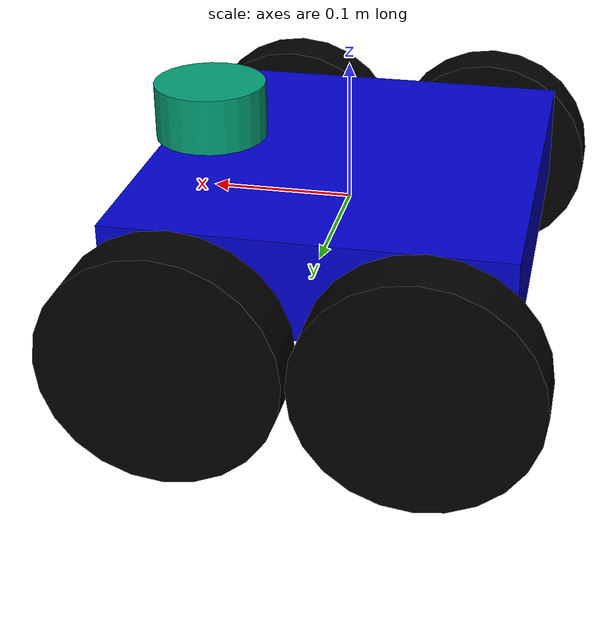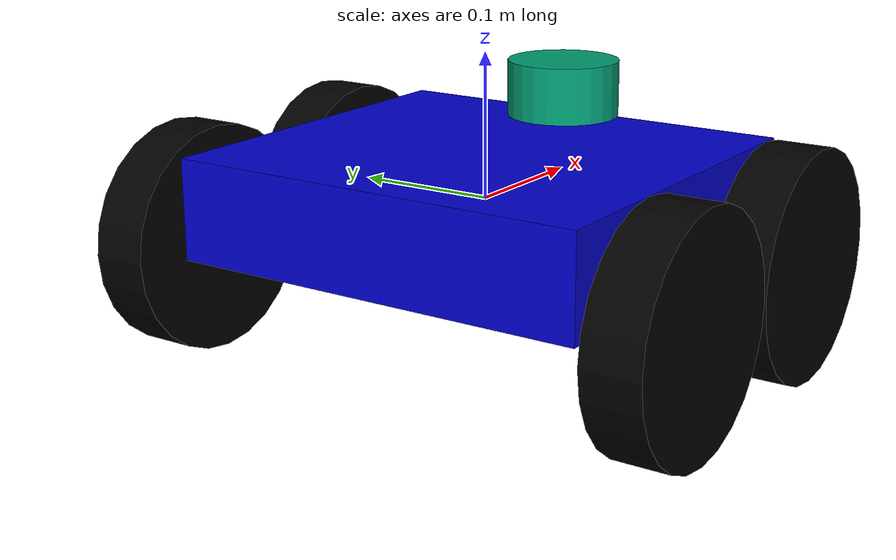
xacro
<?xml version="1.0"?>
<robot name="robot" xmlns:xacro="http://ros.org/wiki/xacro">

  <xacro:property name="wheel_radius" value="0.08" />
  <xacro:property name="wheel_thickness" value="0.04" />
  <xacro:property name="chesis_length" value="0.27" />
  <xacro:property name="chesis_breadth" value="0.3" />
  <xacro:property name="chesis_height" value="0.07" />

  <material name="blue">
    <color rgba="0 0 0.8 1"/>
  </material>

  <material name="black">
    <color rgba="0 0 0 1"/>
  </material>

  <material name="white">
    <color rgba="1 1 1 1"/>
  </material>

  <material name="Orange">
    <color rgba="${255/255} ${108/255} ${10/255} 1.0"/>
  </material>

  <xacro:macro name="box_inertia" params="mass x y z">
    <inertial>
      <mass value="${mass}" />
      <inertia ixx="${(1/12)*mass*(y*y+z*z)}" ixy="0.0" ixz="0.0" iyy="${(1/12)*mass*(x*x+z*z)}" iyz="0.0" izz="${(1/12)*mass*(y*y+x*x)}" />
    </inertial>
  </xacro:macro>

  <xacro:macro name="cyl_inertia" params="mass r h">
    <inertial>
      <mass value="${mass}" />
      <inertia ixx="${(1/12)*mass*(3*r*r+h*h)}" ixy="0.0" ixz="0.0" iyy="${(1/12)*mass*(3*r*r+h*h)}" iyz="0.0" izz="${(1/2)*mass*r*r}" />
    </inertial>
  </xacro:macro>

  <link name="base_link"></link>

  <link name="chesis">
    <visual>
      <geometry>
        <box size="${chesis_length} ${chesis_breadth} ${chesis_height}"/>
      </geometry>
      <material name="blue"/>
    </visual>
    <collision>
      <geometry>
        <box size="${chesis_length} ${chesis_breadth} ${chesis_height}"/>
      </geometry>
    </collision>
    <xacro:box_inertia mass="0.5" x="${chesis_length}" y="${chesis_breadth}" z="${chesis_height}"/>
  </link>

  <gazebo reference="chesis">
       <material>Gazebo/Orange</material>
    </gazebo>

  <joint name="fixed_joint" type="fixed">
      <parent link="base_link"/>
      <child link="chesis"/>
  </joint>

  <xacro:macro name="wheel" params="prefix suffix posx posy">
    <link name="${prefix}_${suffix}_wheel">
      <visual>
        <origin xyz="0 0 0" rpy="${pi/2} 0 0" />
        <geometry>
          <cylinder radius="${wheel_radius}" length="${wheel_thickness}"/>
        </geometry>
        <material name="black"/>
      </visual>
      <collision>
        <origin xyz="0 0 0" rpy="${pi/2} 0 0" />
        <geometry>
          <cylinder radius="${wheel_radius}" length="${wheel_thickness}"/>
        </geometry>
      </collision>
      <xacro:cyl_inertia mass="0.1" r="${wheel_radius}" h="${wheel_thickness}"/>
    </link>
    <joint name="${prefix}_${suffix}_wheel_joint" type="continuous">
      <axis xyz="0 1 0" rpy="0 0 0" />
      <parent link="chesis"/>
      <child link="${prefix}_${suffix}_wheel"/>
      <origin xyz="${(chesis_length*0.3)*posx} ${(chesis_breadth/2+wheel_thickness/2)*1.1*posy} -0.035" rpy="0 0 0"/>
      <dynamics damping="0"/>
    </joint>

    <gazebo reference="${prefix}_${suffix}_wheel">
       <material>Gazebo/DarkGray</material>
    </gazebo>

    <transmission name="${prefix}_${suffix}_wheel_trans">
      <type>transmission_interface/SimpleTransmission</type>
      <actuator name="${prefix}_${suffix}_wheel_motor">
        <mechanicalReduction>1</mechanicalReduction>
      </actuator>
      <joint name="${prefix}_${suffix}_wheel_joint">
        <hardwareInterface>hardware_interface/VelocityJointInterface</hardwareInterface>
      </joint>
    </transmission>
  </xacro:macro>

  <xacro:wheel prefix="front" suffix="left" posx="1" posy="1"/>
  <xacro:wheel prefix="front" suffix="right" posx="1" posy="-1"/>
  <xacro:wheel prefix="back" suffix="left" posx="-1" posy="1"/>
  <xacro:wheel prefix="back" suffix="right" posx="-1" posy="-1"/>

  <xacro:include filename="$(find robot)/urdf/robot/sensors.xacro"/>
  <xacro:rgb_camera camera_name="robot_rgb_camera" parent_link="chesis">
    <box size="0.001 0.008 0.008"/>
    <origin xyz="${(chesis_length/2)*1.001} 0 ${(chesis_height/2)*0.5}" rpy="0 0 0"/>
  </xacro:rgb_camera>
  <xacro:depth_camera camera_name="robot_depth_camera" parent_link="chesis">
    <box size="0.001 0.08 0.01"/>
    <origin xyz="${(chesis_length/2)*1.001} 0 0" rpy="0 0 0"/>
  </xacro:depth_camera>
  <xacro:imu imu_name="robot_chesis_imu" parent_link="chesis">
        <box size="0.008 0.008 0.001"/>
        <origin xyz="0 0 0" rpy="0 0 0"/>
  </xacro:imu>
  <xacro:laser_scanner laser_name="robot_laser_scanner" parent_link="chesis">
    <cylinder length="0.04" radius="0.04"/>
    <origin xyz="${(chesis_length/2)*0.75} 0 ${(chesis_height/2)*2}" rpy="0 0 0"/>
  </xacro:laser_scanner>

  <!-- Gazebo plugin for ROS Control -->
  <gazebo>
    <plugin name="gazebo_ros_control" filename="libgazebo_ros_control.so">
      <robotNamespace>/robot</robotNamespace>
      <legacyModeNS>true</legacyModeNS>
      <robotSimType>gazebo_ros_control/DefaultRobotHWSim</robotSimType>
    </plugin>
  </gazebo>

</robot>

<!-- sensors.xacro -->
<robot xmlns:xacro="http://ros.org/wiki/xacro">

  <xacro:macro name="rgb_camera" params="camera_name parent_link *box *origin">
    <link name="${camera_name}">
      <collision>
        <origin xyz="0 0 0" rpy="0 0 0"/>
        <geometry>
          <xacro:insert_block name="box"/>
        </geometry>
      </collision>

      <visual>
        <origin xyz="0 0 0" rpy="0 0 0"/>
        <geometry>
          <xacro:insert_block name="box"/>
        </geometry>
      </visual>

    </link>

    <joint name="${camera_name}_joint" type="fixed">
      <axis xyz="1 0 0" />
      <xacro:insert_block name="origin"/>
      <parent link="${parent_link}"/>
      <child link="${camera_name}"/>
    </joint>

    <gazebo reference="${camera_name}">
      <sensor type="camera" name="${camera_name}">
        <update_rate>10.0</update_rate>
        <camera name="${camera_name}">
          <horizontal_fov>1.3962634</horizontal_fov>
          <image>
            <width>800</width>
            <height>800</height>
            <format>R8G8B8</format>
          </image>
          <clip>
            <near>0.02</near>
            <far>300</far>
          </clip>
          <noise>
            <type>gaussian</type>
            <mean>0.0</mean>
            <stddev>0.007</stddev>
          </noise>
        </camera>
        <plugin name="rgb_camera_controller" filename="libgazebo_ros_camera.so">
          <alwaysOn>true</alwaysOn>
          <updateRate>0.0</updateRate>
          <cameraName>${camera_name}</cameraName>
          <imageTopicName>image_raw</imageTopicName>
          <cameraInfoTopicName>camera_info</cameraInfoTopicName>
          <frameName>${camera_name}</frameName>
          <hackBaseline>0.07</hackBaseline>
          <distortionK1>0.0</distortionK1>
          <distortionK2>0.0</distortionK2>
          <distortionK3>0.0</distortionK3>
          <distortionT1>0.0</distortionT1>
          <distortionT2>0.0</distortionT2>
        </plugin>
      </sensor>
      <material>Gazebo/Gray</material>
    </gazebo>
  </xacro:macro>

  <xacro:macro name="depth_camera" params="camera_name parent_link *box *origin">
    <link name="${camera_name}">
      <collision>
        <origin xyz="0 0 0" rpy="0 0 0"/>
        <geometry>
          <xacro:insert_block name="box"/>
        </geometry>
      </collision>

      <visual>
        <origin xyz="0 0 0" rpy="0 0 0"/>
        <geometry>
          <xacro:insert_block name="box"/>
        </geometry>
      </visual>

    </link>

    <joint name="${camera_name}_joint" type="fixed">
      <axis xyz="1 0 0" />
      <xacro:insert_block name="origin"/>
      <parent link="${parent_link}"/>
      <child link="${camera_name}"/>
    </joint>

    <link name="camera_depth_link"></link>
    <joint name="camera_depth_correction_joint" type="fixed">
      <origin xyz="0 0 0" rpy="-${pi/2} 0 -${pi/2} "/>
      <parent link="${camera_name}"/>
      <child link="camera_depth_link"/>
    </joint>

    <gazebo reference="${camera_name}">
      <sensor name="${camera_name}_camera" type="depth">
        <update_rate>10</update_rate>
        <camera>
          <horizontal_fov>1.047198</horizontal_fov>
          <image>
            <width>640</width>
            <height>480</height>
            <format>R8G8B8</format>
          </image>
          <clip>
            <near>0.001</near>
            <far>3</far>
          </clip>
        </camera>
        <plugin name="depth_camera_controller" filename="libgazebo_ros_openni_kinect.so">
          <baseline>0.2</baseline>
          <alwaysOn>true</alwaysOn>
          <updateRate>1.0</updateRate>
          <cameraName>${camera_name}_ir</cameraName>
          <imageTopicName>/${camera_name}/depth/image_raw</imageTopicName>
          <cameraInfoTopicName>/${camera_name}/depth/camera_info</cameraInfoTopicName>
          <depthImageTopicName>/${camera_name}/depth/image_raw</depthImageTopicName>
          <depthImageInfoTopicName>/${camera_name}/depth/camera_info</depthImageInfoTopicName>
          <pointCloudTopicName>/${camera_name}/depth/points</pointCloudTopicName>
          <frameName>camera_depth_link</frameName>
          <pointCloudCutoff>0.001</pointCloudCutoff>
          <pointCloudCutoffMax>3.0</pointCloudCutoffMax>
          <distortionK1>0.00000001</distortionK1>
          <distortionK2>0.00000001</distortionK2>
          <distortionK3>0.00000001</distortionK3>
          <distortionT1>0.00000001</distortionT1>
          <distortionT2>0.00000001</distortionT2>
          <CxPrime>0</CxPrime>
          <Cx>0</Cx>
          <Cy>0</Cy>
          <focalLength>0</focalLength>
          <hackBaseline>0</hackBaseline>
        </plugin>
      </sensor>
    </gazebo>
  </xacro:macro>

  <xacro:macro name="imu" params="imu_name parent_link *box *origin">
    <link name="${imu_name}">

      <visual>
        <origin xyz="0 0 0" rpy="0 0 0"/>
        <geometry>
          <xacro:insert_block name="box"/>
        </geometry>
      </visual>

    </link>

    <joint name="${imu_name}_joint" type="fixed">
      <axis xyz="0 0 1" />
      <xacro:insert_block name="origin"/>
      <parent link="${parent_link}"/>
      <child link="${imu_name}"/>
    </joint>

    <gazebo reference="${imu_name}">
      <gravity>true</gravity>
      <sensor name="${imu_name}" type="imu">
        <always_on>true</always_on>
        <update_rate>20</update_rate>
        <visualize>true</visualize>
        <topic>__default_topic__</topic>
        <plugin filename="libgazebo_ros_imu_sensor.so" name="imu_controller">
          <topicName>${imu_name}</topicName>
          <bodyName>${imu_name}_link</bodyName>
          <updateRateHZ>20.0</updateRateHZ>
          <gaussianNoise>0.0</gaussianNoise>
          <xyzOffset>0 0 0</xyzOffset>
          <rpyOffset>0 0 0</rpyOffset>
          <frameName>${imu_name}</frameName>
        </plugin>
        <pose>0 0 0 0 0 0</pose>
      </sensor>
    </gazebo>
  </xacro:macro>

  <xacro:macro name="laser_scanner" params="laser_name parent_link *cylinder *origin">
    <link name="${laser_name}">
      <collision>
        <origin xyz="0 0 0" rpy="0 0 0"/>
        <geometry>
          <xacro:insert_block name="cylinder"/>
        </geometry>
      </collision>

      <visual>
        <origin xyz="0 0 -0.01" rpy="0 0 0"/>
        <geometry>
          <xacro:insert_block name="cylinder"/>
        </geometry>
      </visual>

    </link>

    <joint name="${laser_name}_joint" type="fixed">
      <axis xyz="0 0 1" />
      <xacro:insert_block name="origin"/>
      <parent link="${parent_link}"/>
      <child link="${laser_name}"/>
    </joint>

    <gazebo reference="${laser_name}">
      <sensor type="ray" name="${laser_name}">
        <pose>0 0 0 0 0 0</pose>
        <visualize>true</visualize>
        <update_rate>20</update_rate>
        <ray>
          <scan>
            <horizontal>
              <samples>720</samples>
              <resolution>1</resolution>
              <min_angle>-3.14</min_angle>
              <max_angle>3.14</max_angle>
            </horizontal>
          </scan>
          <range>
            <min>0.10</min>
            <max>7.0</max>
            <resolution>0.01</resolution>
          </range>
          <noise>
            <type>gaussian</type>
            <mean>0.0</mean>
            <stddev>0.01</stddev>
          </noise>
        </ray>
        <plugin name="laser_scanner_controller" filename="libgazebo_ros_laser.so">
          <topicName>${laser_name}/laser/scan</topicName>
          <frameName>${laser_name}</frameName>
        </plugin>
      </sensor>
    </gazebo>
  </xacro:macro>

</robot>
